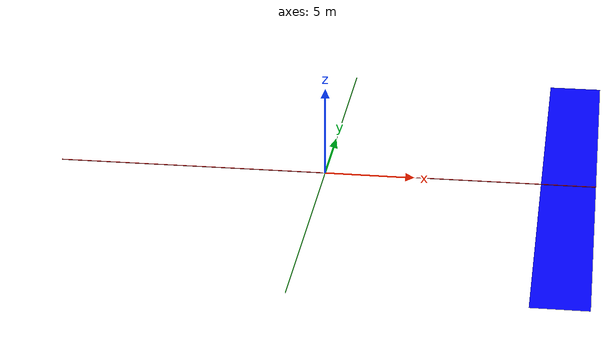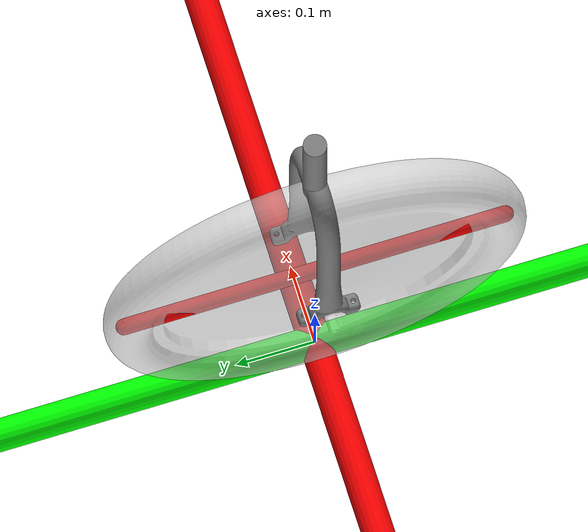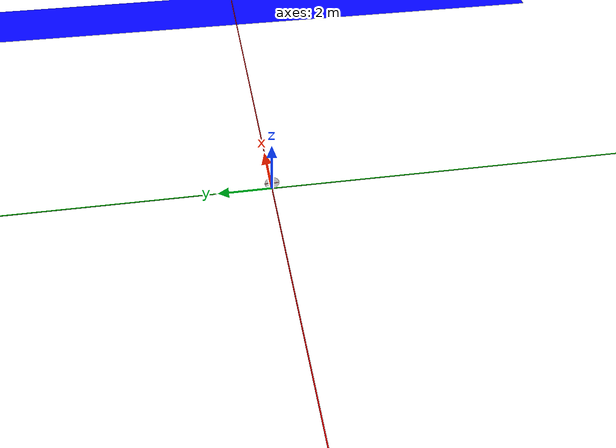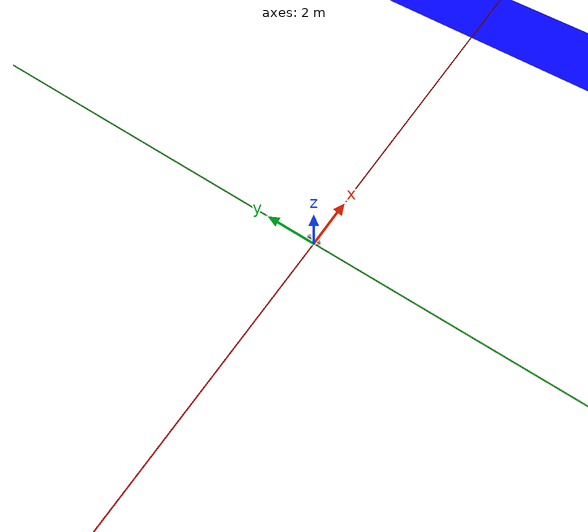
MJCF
<mujoco model="Unicycle">
    <asset>
        <mesh name="wheel" file="UNI_WHEEL.stl" scale="0.01 0.01 0.01"/>
        <mesh name="frame" file="UNI_FRAME.stl" scale="0.01 0.01 0.01"/>
    </asset>

    <worldbody>
        <geom name="x-axis" pos="0 0 0" quat="0.707 0 0.707 0" rgba="1 0 0 1" size="0.02 15" type="capsule"/>
        <geom name="y-axis" pos="0 0 0" quat="0.707 0.707 0 0" rgba="0 1 0 1" size="0.02 15" type="capsule"/>
        <geom name="floor_goal_right" pos="13.5 0 0" size="1.5 15 0.01" type="plane" rgba="0 0 1 1"/>
        <geom name="floor_goal_left" pos="-13.5 0 0" size="1.5 15 0.01" type="plane" rgba="0 0 1 1"/>
        <geom name="floor_goal_top" pos="0 13.5 0" size="1.5 15 0.01" type="plane" euler="0 0 90" rgba="0 0 1 1"/>
        <geom name="floor_goal_bottom" pos="0 -13.5 0" size="1.5 15 0.01" type="plane" euler="0 0 90" rgba="0 0 1 1"/>

        <light pos="0 0 100" dir="0 0 -1" castshadow="false"/>
        <body name="unicycle" pos="0 0 0.266">
            <joint name="free_joint" type="free"/>
            <body name="frame">
                <geom type="mesh" mesh="frame" pos="0 0 0.26" euler="90 0 0" rgba="0.5 0.5 0.5 1"/>
            </body>
            <body name="wheel" pos="0 0 0">
                <joint name="wheel_joint" type="hinge" axis="1 0 0"/>
                <geom type="mesh" mesh="wheel" pos="0 0 0" euler="90 0 0" rgba="0.8 0.8 0.8 0.6"/>
                <!-- Visible marker inside the wheel -->
                <geom name="wheel_marker" type="capsule" size="0.01 0.24" pos="0 0 0" quat="0.707 0.707 0 0" rgba="1 0 0 1"/>
            </body>
        </body>
    </worldbody>

    <actuator>
        <motor name="wheel_motor" joint="wheel_joint" gear="20" ctrllimited="true" ctrlrange="-1 1"/>
    </actuator>
</mujoco>
